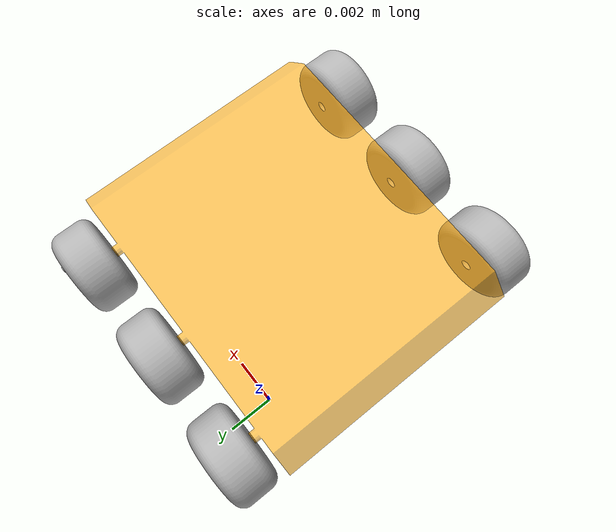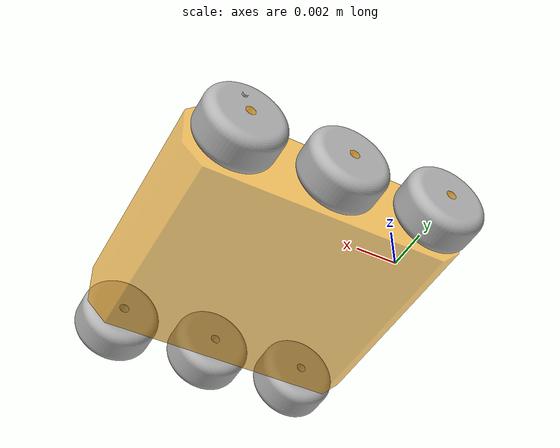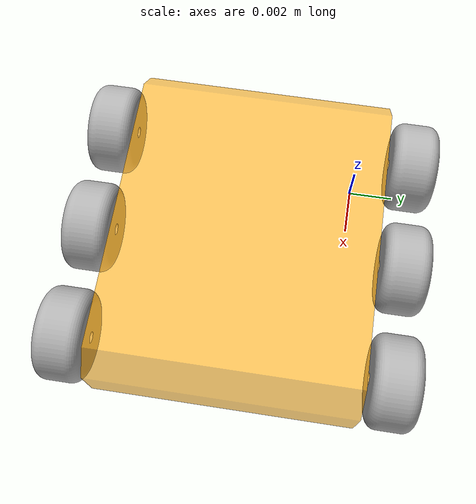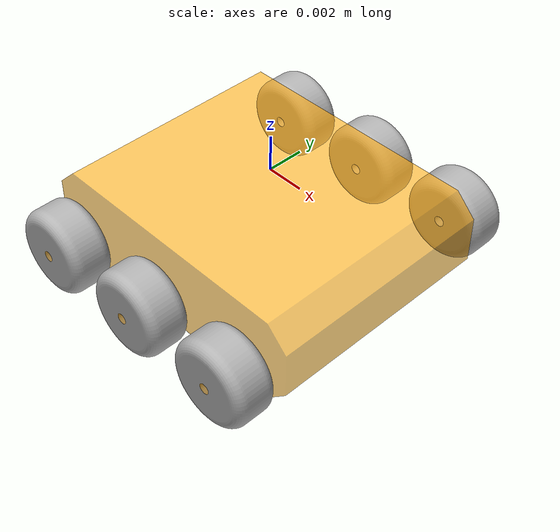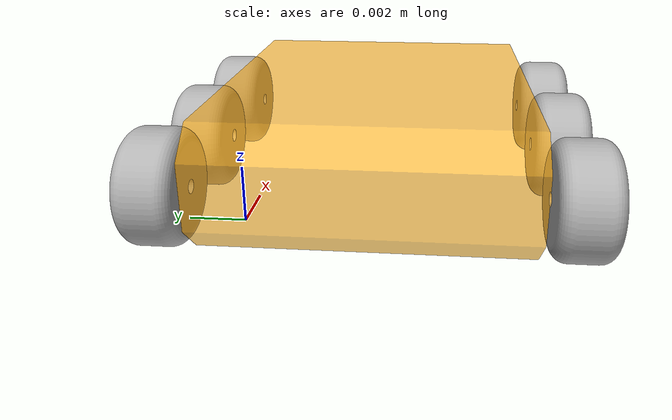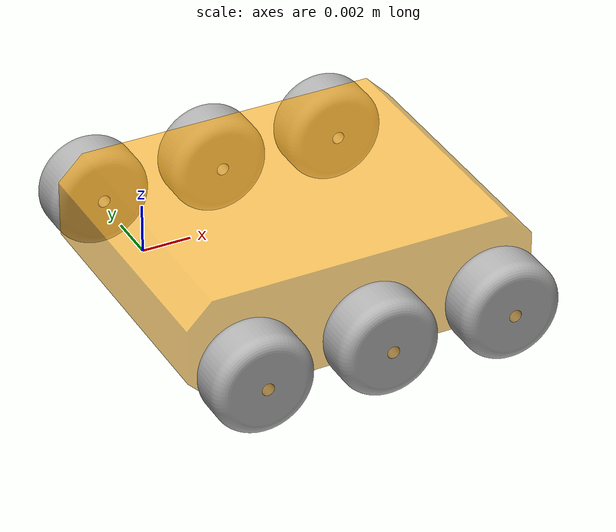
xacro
<?xml version="1.0"?>
<robot name="hermes" xmlns:xacro="http://www.ros.org/wiki/xacro">

<xacro:include filename="$(find hermes_description)/urdf/materials.xacro" />
<xacro:include filename="$(find hermes_description)/urdf/hermes.trans" />
<xacro:include filename="$(find hermes_description)/urdf/hermes.gazebo" />

<link name="base_link">
  <inertial>
    <origin xyz="0.10477500075901933 -0.1111250007629394 0.05391906662822746" rpy="0 0 0"/>
    <mass value="81.72374908316645"/>
    <inertia ixx="0.615655" iyy="0.885686" izz="1.349622" ixy="0.0" iyz="0.0" ixz="-0.0"/>
  </inertial>
  <visual>
    <origin xyz="0 0 0" rpy="0 0 0"/>
    <geometry>
      <mesh filename="file://$(find hermes_description)/meshes/base_link.stl" scale="0.001 0.001 0.001"/>
    </geometry>
    <material name="orange"/>
  </visual>
  <collision>
    <origin xyz="0 0 0" rpy="0 0 0"/>
    <geometry>
      <mesh filename="file://$(find hermes_description)/meshes/base_link.stl" scale="0.001 0.001 0.001"/>
    </geometry>
  </collision>
</link>

<link name="wheel_rear_right">
  <inertial>
    <origin xyz="0.2921020381367547 -0.24129285394654118 5.955680870910196e-06" rpy="0 0 0"/>
    <mass value="3.0195619873802135"/>
    <inertia ixx="0.002497" iyy="0.003792" izz="0.002497" ixy="-0.0" iyz="-0.0" ixz="-0.0"/>
  </inertial>
  <visual>
    <origin xyz="0.060325 -0.3048 -0.041275" rpy="0 0 0"/>
    <geometry>
      <mesh filename="file://$(find hermes_description)/meshes/Wheel1_1.stl" scale="0.001 0.001 0.001"/>
    </geometry>
    <material name="silver"/>
  </visual>
  <collision>
    <origin xyz="0.060325 -0.3048 -0.041275" rpy="0 0 0"/>
    <geometry>
      <mesh filename="file://$(find hermes_description)/meshes/Wheel1_1.stl" scale="0.001 0.001 0.001"/>
    </geometry>
  </collision>
</link>

<link name="wheel_middle_right">
  <inertial>
    <origin xyz="0.1651000007629506 -0.11430000076293943 1.3877787807814457e-17" rpy="0 0 0"/>
    <mass value="3.0187528289577594"/>
    <inertia ixx="0.002496" iyy="0.003791" izz="0.002496" ixy="0.0" iyz="0.0" ixz="0.0"/>
  </inertial>
  <visual>
    <origin xyz="0.060325 -0.1778 -0.041275" rpy="0 0 0"/>
    <geometry>
      <mesh filename="file://$(find hermes_description)/meshes/Wheel2_1.stl" scale="0.001 0.001 0.001"/>
    </geometry>
    <material name="silver"/>
  </visual>
  <collision>
    <origin xyz="0.060325 -0.1778 -0.041275" rpy="0 0 0"/>
    <geometry>
      <mesh filename="file://$(find hermes_description)/meshes/Wheel2_1.stl" scale="0.001 0.001 0.001"/>
    </geometry>
  </collision>
</link>

<link name="wheel_front_right">
  <inertial>
    <origin xyz="0.038100000000011125 0.012699999237060541 2.0816681711721685e-17" rpy="0 0 0"/>
    <mass value="3.018752828957761"/>
    <inertia ixx="0.002496" iyy="0.003791" izz="0.002496" ixy="0.0" iyz="0.0" ixz="0.0"/>
  </inertial>
  <visual>
    <origin xyz="0.060325 -0.0508 -0.041275" rpy="0 0 0"/>
    <geometry>
      <mesh filename="file://$(find hermes_description)/meshes/Wheel3_1.stl" scale="0.001 0.001 0.001"/>
    </geometry>
    <material name="silver"/>
  </visual>
  <collision>
    <origin xyz="0.060325 -0.0508 -0.041275" rpy="0 0 0"/>
    <geometry>
      <mesh filename="file://$(find hermes_description)/meshes/Wheel3_1.stl" scale="0.001 0.001 0.001"/>
    </geometry>
  </collision>
</link>

<link name="wheel_rear_left">
  <inertial>
    <origin xyz="-0.1079499992370716 -0.5905500007629394 1.3877787807814457e-17" rpy="0 0 0"/>
    <mass value="3.0187528289577594"/>
    <inertia ixx="0.002496" iyy="0.003791" izz="0.002496" ixy="0.0" iyz="0.0" ixz="0.0"/>
  </inertial>
  <visual>
    <origin xyz="-0.339725 -0.3048 -0.041275" rpy="0 0 0"/>
    <geometry>
      <mesh filename="file://$(find hermes_description)/meshes/Wheel6_1.stl" scale="0.001 0.001 0.001"/>
    </geometry>
    <material name="silver"/>
  </visual>
  <collision>
    <origin xyz="-0.339725 -0.3048 -0.041275" rpy="0 0 0"/>
    <geometry>
      <mesh filename="file://$(find hermes_description)/meshes/Wheel6_1.stl" scale="0.001 0.001 0.001"/>
    </geometry>
  </collision>
</link>

<link name="wheel_middle_left">
  <inertial>
    <origin xyz="-0.23494999923707155 -0.46355000076293945 4.163336342344337e-17" rpy="0 0 0"/>
    <mass value="3.018752828957758"/>
    <inertia ixx="0.002496" iyy="0.003791" izz="0.002496" ixy="0.0" iyz="0.0" ixz="0.0"/>
  </inertial>
  <visual>
    <origin xyz="-0.339725 -0.1778 -0.041275" rpy="0 0 0"/>
    <geometry>
      <mesh filename="file://$(find hermes_description)/meshes/Wheel5_1.stl" scale="0.001 0.001 0.001"/>
    </geometry>
    <material name="silver"/>
  </visual>
  <collision>
    <origin xyz="-0.339725 -0.1778 -0.041275" rpy="0 0 0"/>
    <geometry>
      <mesh filename="file://$(find hermes_description)/meshes/Wheel5_1.stl" scale="0.001 0.001 0.001"/>
    </geometry>
  </collision>
</link>

<link name="wheel_front_left">
  <inertial>
    <origin xyz="-0.36194999923707155 -0.33655000076293945 -6.938893903907228e-18" rpy="0 0 0"/>
    <mass value="3.018752828957761"/>
    <inertia ixx="0.002496" iyy="0.003791" izz="0.002496" ixy="-0.0" iyz="0.0" ixz="0.0"/>
  </inertial>
  <visual>
    <origin xyz="-0.339725 -0.0508 -0.041275" rpy="0 0 0"/>
    <geometry>
      <mesh filename="file://$(find hermes_description)/meshes/Wheel4_1.stl" scale="0.001 0.001 0.001"/>
    </geometry>
    <material name="silver"/>
  </visual>
  <collision>
    <origin xyz="-0.339725 -0.0508 -0.041275" rpy="0 0 0"/>
    <geometry>
      <mesh filename="file://$(find hermes_description)/meshes/Wheel4_1.stl" scale="0.001 0.001 0.001"/>
    </geometry>
  </collision>
</link>

<joint name="base_to_wheel_rear_right" type="continuous">
  <origin xyz="-0.060325 0.3048 0.041275" rpy="0 0 0"/>
  <parent link="base_link"/>
  <child link="wheel_rear_right"/>
  <axis xyz="0 1 0" />
</joint>

<joint name="base_to_wheel_middle_right" type="continuous">
  <origin xyz="-0.060325 0.1778 0.041275" rpy="0 0 0"/>
  <parent link="base_link"/>
  <child link="wheel_middle_right"/>
  <axis xyz="0 1 0" />
</joint>

<joint name="base_to_wheel_front_right" type="fixed">
  <origin xyz="-0.060325 0.0508 0.041275" rpy="0 0 0"/>
  <parent link="base_link"/>
  <child link="wheel_front_right"/>
</joint>

<joint name="base_to_wheel_rear_left" type="fixed">
  <origin xyz="0.339725 0.3048 0.041275" rpy="0 0 0"/>
  <parent link="base_link"/>
  <child link="wheel_rear_left"/>
</joint>

<joint name="base_to_wheel_middle_left" type="fixed">
  <origin xyz="0.339725 0.1778 0.041275" rpy="0 0 0"/>
  <parent link="base_link"/>
  <child link="wheel_middle_left"/>
</joint>

<joint name="base_to_wheel_front_left" type="fixed">
  <origin xyz="0.339725 0.0508 0.041275" rpy="0 0 0"/>
  <parent link="base_link"/>
  <child link="wheel_front_left"/>
</joint>

</robot>

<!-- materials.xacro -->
<robot name="hermes" xmlns:xacro="http://www.ros.org/wiki/xacro" >

<material name="silver">
  <color rgba="0.700 0.700 0.700 1.000"/>
</material>

<material name="orange">
    <color rgba="1.000 0.650 0 0.600" />
</material>

<material name="black">
    <color rgba="1.000 1.000 1.000 1.000" />
</material>

</robot>

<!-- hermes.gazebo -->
<robot name="hermes" xmlns:xacro="http://www.ros.org/wiki/xacro" >

<xacro:property name="body_color" value="Gazebo/Silver" />

<gazebo>
  <plugin name="control" filename="libgazebo_ros_control.so"/>
</gazebo>
<gazebo reference="base_link">
  <material>${body_color}</material>
  <mu1>0.2</mu1>
  <mu2>0.2</mu2>
  <self_collide>true</self_collide>
  <gravity>true</gravity>
</gazebo>

<gazebo reference="old_component__2__1">
  <material>${body_color}</material>
  <mu1>0.2</mu1>
  <mu2>0.2</mu2>
  <self_collide>true</self_collide>
</gazebo>

<gazebo reference="old_component__3__1">
  <material>${body_color}</material>
  <mu1>0.2</mu1>
  <mu2>0.2</mu2>
  <self_collide>true</self_collide>
</gazebo>

<gazebo reference="old_component__4__1">
  <material>${body_color}</material>
  <mu1>0.2</mu1>
  <mu2>0.2</mu2>
  <self_collide>true</self_collide>
</gazebo>

<gazebo reference="old_component__7__1">
  <material>${body_color}</material>
  <mu1>0.2</mu1>
  <mu2>0.2</mu2>
  <self_collide>true</self_collide>
</gazebo>

<gazebo reference="old_component__6__1">
  <material>${body_color}</material>
  <mu1>0.2</mu1>
  <mu2>0.2</mu2>
  <self_collide>true</self_collide>
</gazebo>

<gazebo reference="old_component__5__1">
  <material>${body_color}</material>
  <mu1>0.2</mu1>
  <mu2>0.2</mu2>
  <self_collide>true</self_collide>
</gazebo>

</robot>
